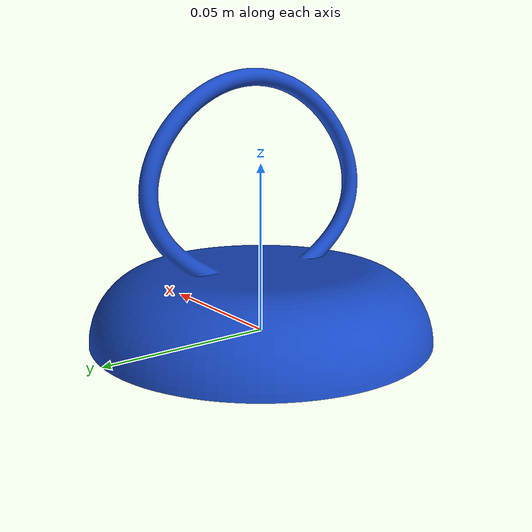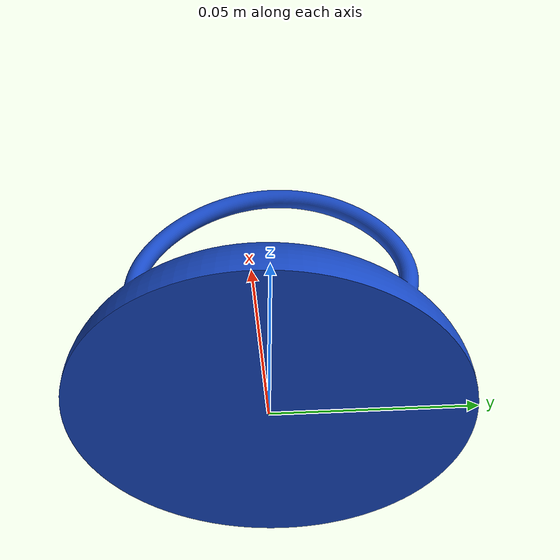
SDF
<?xml version="1.0" ?>
<sdf version="1.6">
  <model name="Blue_Box">
    <self_collide>false</self_collide>
    <link name="link">
      <inertial>
        <mass>1.0</mass>
      </inertial>
      <collision name="collision">
      <geometry>
        <mesh>
          <uri>model://Blue_Box/meshes/Blue_Box.stl</uri>
          <scale>0.001 0.001 0.001</scale>
        </mesh>
      </geometry>
      <surface>
        <contact>
          <ode>
            <max_vel>0.1</max_vel>
            <min_depth>0.001</min_depth>
          </ode>
        </contact>
      </surface>
      </collision>
      <visual name="visual">
        <geometry>
          <mesh>
            <uri>model://Blue_Box/meshes/Blue_Box.stl</uri>
            <scale>0.001 0.001 0.001</scale>
          </mesh>
        </geometry>
	<material>
	  <ambient>0.1 0.2 0.7 1.0</ambient> <!-- Cool blue ambient color -->
	  <diffuse>0.1 0.3 0.8 1.0</diffuse> <!-- Brighter blue diffuse color -->
	  <specular>0.3 0.3 0.4 1.0</specular> <!-- Soft gray-blue highlights -->
	  <emissive>0.0 0.0 0.0 1.0</emissive> <!-- No emissive color -->
	</material>
      </visual>
    </link>
    <static>0</static>
  </model>
</sdf>
